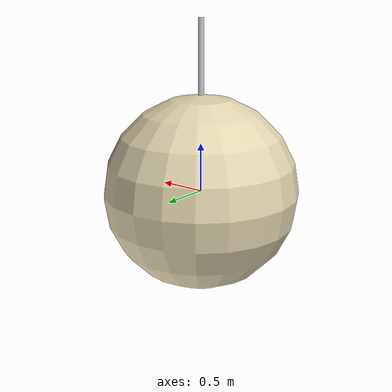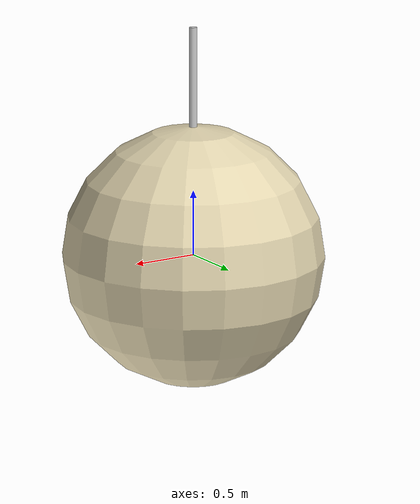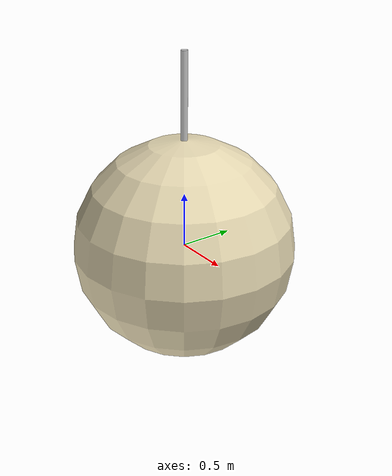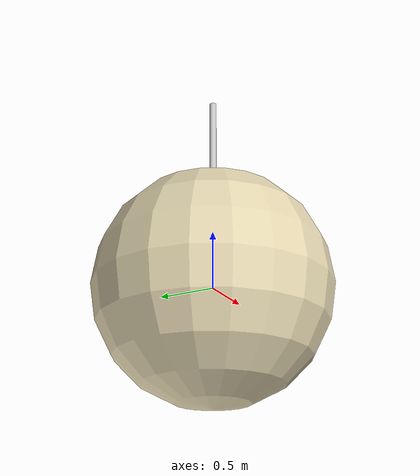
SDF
<?xml version="1.0"?>
<sdf version="1.9">
  <model name="habitat_dome">
    <static>true</static>
    <link name="dome_link">
      <visual name="dome_visual">
        <geometry>
          <sphere>
            <radius>1.0</radius>
          </sphere>
        </geometry>
        <material>
          <ambient>0.9 0.85 0.7 1</ambient>
          <diffuse>0.9 0.85 0.7 1</diffuse>
        </material>
      </visual>
      <collision name="dome_collision">
        <geometry>
          <sphere>
            <radius>1.0</radius>
          </sphere>
        </geometry>
      </collision>
      <!-- Sink half into ground so it looks like a hemisphere -->
      <pose>0 0 0 0 0 0</pose>
    </link>
    <!-- Flag pole on top for visibility -->
    <link name="flag_pole">
      <pose>0 0 1.0 0 0 0</pose>
      <visual name="pole_visual">
        <geometry>
          <cylinder>
            <radius>0.03</radius>
            <length>1.5</length>
          </cylinder>
        </geometry>
        <material>
          <ambient>0.8 0.8 0.8 1</ambient>
          <diffuse>0.8 0.8 0.8 1</diffuse>
        </material>
      </visual>
    </link>
    <joint name="pole_joint" type="fixed">
      <parent>dome_link</parent>
      <child>flag_pole</child>
    </joint>
  </model>
</sdf>
